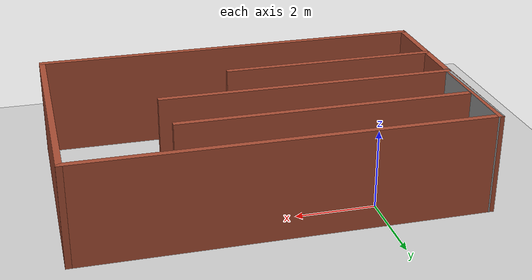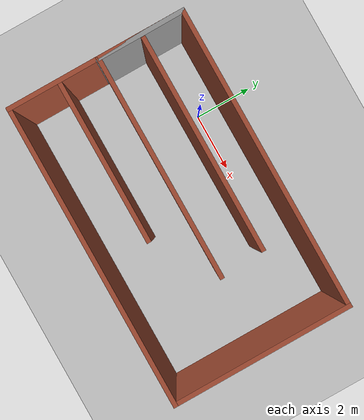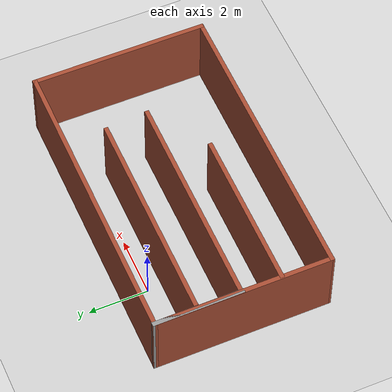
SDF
<sdf version="1.4">
 <world name="default">
  <light name="sun" type="directional">
   <pose>0 0 10 0 -0 0</pose>
   <diffuse>0.8 0.8 0.8 1</diffuse>
   <specular>0.2 0.2 0.2 1</specular>
   <attenuation>
    <range>1000</range>
    <constant>0.9</constant>
    <linear>0.01</linear>
    <quadratic>0.001</quadratic>
   </attenuation>
   <direction>0.5 0.1 -0.9</direction>
  </light>
  <model name="ground_plane">
   <static>1</static>
   <link name="link">
    <collision name="collision">
     <geometry><plane><normal>0 0 1</normal><size>100 100</size></plane></geometry>
     <surface><friction><ode><mu>100</mu><mu2>50</mu2></ode></friction></surface>
    </collision>
    <visual name="visual">
     <cast_shadows>0</cast_shadows>
     <geometry><plane><normal>0 0 1</normal><size>100 100</size></plane></geometry>
     <material>
      <script><uri>file://media/materials/scripts/gazebo.material</uri><name>Gazebo/Grey</name></script>
     </material>
    </visual>
    <velocity_decay><linear>0</linear><angular>0</angular></velocity_decay>
   </link>
  </model>
  <scene><ambient>0.4 0.4 0.4 1</ambient><background>0.7 0.7 0.7 1</background><shadows>0</shadows></scene>
  <physics type="ode">
   <max_step_size>0.01</max_step_size>
   <real_time_factor>1</real_time_factor>
   <real_time_update_rate>0</real_time_update_rate>
   <gravity>0 0 -9.8</gravity>
  </physics>
  <include><uri>model://sample_maze</uri><pose>2.4 -2.1 0 0 0 0</pose></include>
 </world>
</sdf>

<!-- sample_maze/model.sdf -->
<sdf version='1.7'>
  <model name='sample_maze'>
    <pose>0.574925 -1.69761 0 0 -0 0</pose>
    <link name='Wall_0'>
      <collision name='Wall_0_Collision'>
        <geometry>
          <box>
            <size>3.03529 0.15 2.5</size>
          </box>
        </geometry>
        <pose>0 0 1.25 0 -0 0</pose>
      </collision>
      <visual name='Wall_0_Visual'>
        <pose>0 0 1.25 0 -0 0</pose>
        <geometry>
          <box>
            <size>3.03529 0.15 2.5</size>
          </box>
        </geometry>
        <material>
          <script>
            <uri>file://media/materials/scripts/gazebo.material</uri>
            <name>Gazebo/Grey</name>
          </script>
          <ambient>1 1 1 1</ambient>
        </material>
        <meta>
          <layer>0</layer>
        </meta>
      </visual>
      <pose>-4.98487 1.49994 0 0 -0 1.57769</pose>
    </link>
    <link name='Wall_1'>
      <collision name='Wall_1_Collision'>
        <geometry>
          <box>
            <size>6.03552 0.15 2.5</size>
          </box>
        </geometry>
        <pose>0 0 1.25 0 -0 0</pose>
      </collision>
      <visual name='Wall_1_Visual'>
        <pose>0 0 1.25 0 -0 0</pose>
        <geometry>
          <box>
            <size>6.03552 0.15 2.5</size>
          </box>
        </geometry>
        <material>
          <script>
            <uri>file://media/materials/scripts/gazebo.material</uri>
            <name>Gazebo/Bricks</name>
          </script>
          <ambient>1 1 1 1</ambient>
        </material>
        <meta>
          <layer>0</layer>
        </meta>
      </visual>
      <pose>-4.98487 -6.5e-05 0 0 -0 -1.56742</pose>
    </link>
    <link name='Wall_10'>
      <collision name='Wall_10_Collision'>
        <geometry>
          <box>
            <size>7.25 0.15 2.5</size>
          </box>
        </geometry>
        <pose>0 0 1.25 0 -0 0</pose>
      </collision>
      <visual name='Wall_10_Visual'>
        <pose>0 0 1.25 0 -0 0</pose>
        <geometry>
          <box>
            <size>7.25 0.15 2.5</size>
          </box>
        </geometry>
        <material>
          <script>
            <uri>file://media/materials/scripts/gazebo.material</uri>
            <name>Gazebo/Bricks</name>
          </script>
          <ambient>1 1 1 1</ambient>
        </material>
        <meta>
          <layer>0</layer>
        </meta>
      </visual>
      <pose>-1.27402 1.54146 0 0 -0 0</pose>
    </link>
    <link name='Wall_2'>
      <collision name='Wall_2_Collision'>
        <geometry>
          <box>
            <size>10.12 0.15 2.5</size>
          </box>
        </geometry>
        <pose>0 0 1.25 0 -0 0</pose>
      </collision>
      <visual name='Wall_2_Visual'>
        <pose>0 0 1.25 0 -0 0</pose>
        <geometry>
          <box>
            <size>10.12 0.15 2.5</size>
          </box>
        </geometry>
        <material>
          <script>
            <uri>file://media/materials/scripts/gazebo.material</uri>
            <name>Gazebo/Bricks</name>
          </script>
          <ambient>1 1 1 1</ambient>
        </material>
        <meta>
          <layer>0</layer>
        </meta>
      </visual>
      <pose>0.010075 -2.94239 0 0 -0 0</pose>
    </link>
    <link name='Wall_3'>
      <collision name='Wall_3_Collision'>
        <geometry>
          <box>
            <size>6.02552 0.15 2.5</size>
          </box>
        </geometry>
        <pose>0 0 1.25 0 -0 0</pose>
      </collision>
      <visual name='Wall_3_Visual'>
        <pose>0 0 1.25 0 -0 0</pose>
        <geometry>
          <box>
            <size>6.02552 0.15 2.5</size>
          </box>
        </geometry>
        <material>
          <script>
            <uri>file://media/materials/scripts/gazebo.material</uri>
            <name>Gazebo/Bricks</name>
          </script>
          <ambient>1 1 1 1</ambient>
        </material>
        <meta>
          <layer>0</layer>
        </meta>
      </visual>
      <pose>4.98513 0.004935 0 0 -0 1.57418</pose>
    </link>
    <link name='Wall_4'>
      <collision name='Wall_4_Collision'>
        <geometry>
          <box>
            <size>10.12 0.15 2.5</size>
          </box>
        </geometry>
        <pose>0 0 1.25 0 -0 0</pose>
      </collision>
      <visual name='Wall_4_Visual'>
        <pose>0 0 1.25 0 -0 0</pose>
        <geometry>
          <box>
            <size>10.12 0.15 2.5</size>
          </box>
        </geometry>
        <material>
          <script>
            <uri>file://media/materials/scripts/gazebo.material</uri>
            <name>Gazebo/Bricks</name>
          </script>
          <ambient>1 1 1 1</ambient>
        </material>
        <meta>
          <layer>0</layer>
        </meta>
      </visual>
      <pose>-0.009812 2.94226 0 0 -0 3.14159</pose>
    </link>
    <link name='Wall_6'>
      <collision name='Wall_6_Collision'>
        <geometry>
          <box>
            <size>5.5 0.15 2.5</size>
          </box>
        </geometry>
        <pose>0 0 1.25 0 -0 0</pose>
      </collision>
      <visual name='Wall_6_Visual'>
        <pose>0 0 1.25 0 -0 0</pose>
        <geometry>
          <box>
            <size>5.5 0.15 2.5</size>
          </box>
        </geometry>
        <material>
          <script>
            <uri>file://media/materials/scripts/gazebo.material</uri>
            <name>Gazebo/Bricks</name>
          </script>
          <ambient>1 1 1 1</ambient>
        </material>
        <meta>
          <layer>0</layer>
        </meta>
      </visual>
      <pose>-2.26993 -1.26706 0 0 -0 0</pose>
    </link>
    <link name='Wall_8'>
      <collision name='Wall_8_Collision'>
        <geometry>
          <box>
            <size>7.5 0.15 2.5</size>
          </box>
        </geometry>
        <pose>0 0 1.25 0 -0 0</pose>
      </collision>
      <visual name='Wall_8_Visual'>
        <pose>0 0 1.25 0 -0 0</pose>
        <geometry>
          <box>
            <size>7.5 0.15 2.5</size>
          </box>
        </geometry>
        <material>
          <script>
            <uri>file://media/materials/scripts/gazebo.material</uri>
            <name>Gazebo/Bricks</name>
          </script>
          <ambient>1 1 1 1</ambient>
        </material>
        <meta>
          <layer>0</layer>
        </meta>
      </visual>
      <pose>-1.29004 0.087147 0 0 -0 0</pose>
    </link>
    <static>1</static>
  </model>
</sdf>
